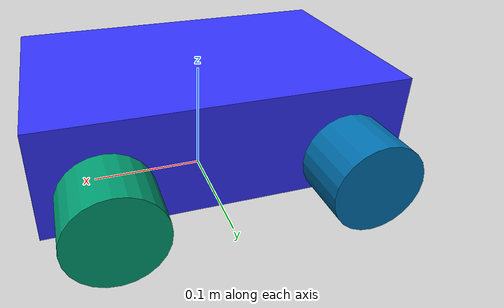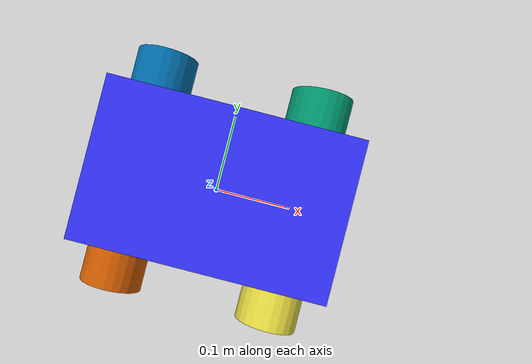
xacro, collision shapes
<?xml version="1.0"?>
<robot xmlns:xacro="http://www.ros.org/wiki/xacro" name="rona">

    <!-- In this file the basic structure of the omnidirectional robot RONA is described -->

    <xacro:include filename="$(find simple_rona_robot)/simple_description/front_left_wheel.xacro"/>
    <xacro:include filename="$(find simple_rona_robot)/simple_description/front_right_wheel.xacro"/>
    <xacro:include filename="$(find simple_rona_robot)/simple_description/rear_left_wheel.xacro"/>
    <xacro:include filename="$(find simple_rona_robot)/simple_description/rear_right_wheel.xacro"/>
    <xacro:include filename="$(find simple_rona_robot)/simple_description/colors.xacro"/>
    <xacro:include filename="$(find simple_rona_robot)/simple_description/physical_properties.xacro"/>

    <!-- ROBOT DESCRIPTION START -->

    <!-- Base link -->
    <link name="base_link">
    </link>

    <!-- Chassis -->
    <link name="chassis">
        <visual>
            <origin xyz="0 0 ${chassis_height/2}"/>
            <geometry>
                <box size="${chassis_length} ${chassis_width} ${chassis_height}"/>
            </geometry>
            <material name="blue"/>
        </visual>

        <collision>
            <origin xyz="0 0 ${chassis_height/2}"/>
            <geometry>
                <box size="0.297 0.188 0.09"/>
            </geometry>
            <material name="blue"/>
        </collision>

        <xacro:inertial_box mass="3" x="${chassis_length}" y="${chassis_width}" z="${chassis_height}">
            <origin xyz="0 0 ${chassis_length}" rpy="0 0 0"/>
        </xacro:inertial_box>

    </link>

    <joint name="chassis_joint" type="fixed">
        <parent link="base_link"/>
        <child link="chassis"/>
        <origin xyz="0 0 0.022"/>
    </joint>

    <!-- Front left wheel -->
    <xacro:front_left_wheel/>

    <!-- Front right wheel -->
    <xacro:front_right_wheel/>

    <!-- Rear left wheel -->
    <xacro:rear_left_wheel/>

    <!-- Rear right wheel -->
    <xacro:rear_right_wheel/>

    <!-- ROBOT DESCRIPTION END -->

</robot>

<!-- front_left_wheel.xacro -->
<robot xmlns:xacro="http://www.ros.org/wiki/xacro" >
    <xacro:include filename="physical_properties.xacro"/>
    <xacro:include filename="inertial_macros.xacro"/>

    <xacro:macro name="front_left_wheel">

        <link name="front_left_wheel">

            <inertial>
                <origin xyz = "0 0 0"/>
                <mass value="0.4"/>
                <inertia ixx="0.000239" ixy="0.0" ixz="0.0"
                        iyy="0.000239" iyz="0.0"
                        izz="0.000044" />
            </inertial>

            <visual>
                <!-- En rviz el eje X es el rojo, el Y el verde y el Z el azul -->
                <!-- Necesito seguir ajustando más fino basándome en el cilindro de colisiones -->
                <origin xyz="0.2543 -0.02958 -0.169" rpy="-${pi/2} 0 0"/>
                <geometry>
                    <mesh scale="0.001 0.001 0.001" filename="package://simple_rona_robot/meshes/front_left_wheel.stl"/>
                </geometry>
            </visual>

            <collision>
                <origin xyz="0 0 0" rpy="0 0 0"/>
                <geometry>
                    <cylinder radius="0.0375" length="0.05"/>
                </geometry>
            </collision>
        </link>

        <joint name="front_left_wheel_joint" type="continuous">
            <parent link="chassis"/>
            <child link="front_left_wheel"/>
            <origin xyz="${wheel_offset_x} ${wheel_offset_y} ${wheel_offset_z}" rpy="-${pi/2} 0 0"/>
            <axis xyz="0 0 1"/>
        </joint>
    </xacro:macro>

</robot>

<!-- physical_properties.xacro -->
<robot xmlns:xacro="http://www.ros.org/wiki/xacro" >

    <!-- Chassis measures -->
    <xacro:property name="chassis_length" value="0.297"/>
    <xacro:property name="chassis_width" value="0.188"/>
    <xacro:property name="chassis_height" value="0.09"/>
    <!-- En rviz el eje X es el rojo, el Y el verde y el Z el azul -->

    <!-- Wheels parameters -->
    <xacro:property name="wheel_offset_y" value="${chassis_width/2 + 0.025}"/>
    <xacro:property name="wheel_offset_x" value="${chassis_length/2 - 0.051}"/>
    <xacro:property name="wheel_offset_z" value="0.028"/>
    <xacro:property name="wheel_radius" value="0.0375"/>

    <!-- Rollers measures -->
    <xacro:property name="roller_diameter" value="0.01"/>
    <xacro:property name="roller_length" value="0.01"/>

</robot>

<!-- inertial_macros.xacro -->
<robot xmlns:xacro="http://www.ros.org/wiki/xacro" >

    <!-- Specify some standard inertial calculations https://en.wikipedia.org/wiki/List_of_moments_of_inertia -->
    <!-- These make use of xacro's mathematical functionality -->

    <xacro:macro name="inertial_box" params="mass x y z *origin">
        <inertial>
            <xacro:insert_block name="origin"/>
            <mass value="${mass}" />
            <inertia ixx="${(1/12) * mass * (y*y+z*z)}" ixy="0.0" ixz="0.0"
                    iyy="${(1/12) * mass * (x*x+z*z)}" iyz="0.0"
                    izz="${(1/12) * mass * (x*x+y*y)}" />
        </inertial>
    </xacro:macro>

    <xacro:macro name="inertial_cylinder" params="mass length radius *origin">
        <inertial>
            <xacro:insert_block name="origin"/>
            <mass value="${mass}" />
            <inertia ixx="${(1/12) * mass * (3*radius*radius + length*length)}" ixy="0.0" ixz="0.0"
                    iyy="${(1/12) * mass * (3*radius*radius + length*length)}" iyz="0.0"
                    izz="${(1/2) * mass * (radius*radius)}" />
        </inertial>
    </xacro:macro>

</robot>

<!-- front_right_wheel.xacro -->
<robot xmlns:xacro="http://www.ros.org/wiki/xacro" >
    <xacro:include filename="physical_properties.xacro"/>
    <xacro:include filename="inertial_macros.xacro"/>

    <xacro:macro name="front_right_wheel">

        <link name="front_right_wheel">

            <inertial>
                <origin xyz = "0 0 0"/>
                <mass value="0.4"/>
                <inertia ixx="0.000239" ixy="0.0" ixz="0.0"
                        iyy="0.000239" iyz="0.0"
                        izz="0.000044" />
            </inertial>

            <visual>
                <origin xyz="0.2548 -0.03 0.033" rpy="-${pi/2} 0 0"/>
                <geometry>
                    <mesh scale="0.001 0.001 0.001" filename="package://simple_rona_robot/meshes/front_right_wheel.stl"/>
                </geometry>
            </visual>

            <collision>
                <origin xyz="0 0 0" rpy="0 0 0"/>
                <geometry>
                    <cylinder radius="0.0375" length="0.05"/>
                </geometry>
            </collision>
        </link>

        <joint name="front_right_wheel_joint" type="continuous">
            <parent link="chassis"/>
            <child link="front_right_wheel"/>
            <origin xyz="${wheel_offset_x} ${-wheel_offset_y} ${wheel_offset_z}" rpy="-${pi/2} 0 0"/>
            <axis xyz="0 0 1"/>
        </joint>
    </xacro:macro>

</robot>

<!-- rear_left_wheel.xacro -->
<robot xmlns:xacro="http://www.ros.org/wiki/xacro" >
    <xacro:include filename="physical_properties.xacro"/>
    <xacro:include filename="inertial_macros.xacro"/>

    <xacro:macro name="rear_left_wheel">

        <link name="rear_left_wheel">

            <inertial>
                <origin xyz = "0 0 0"/>
                <mass value="0.4"/>
                <inertia ixx="0.000239" ixy="0.0" ixz="0.0"
                        iyy="0.000239" iyz="0.0"
                        izz="0.000044" />
            </inertial>

            <visual>
                <origin xyz="0.0451 -0.03 -0.1691" rpy="-${pi/2} 0 0"/>
                <geometry>
                    <mesh scale="0.001 0.001 0.001" filename="package://simple_rona_robot/meshes/rear_left_wheel.stl"/>
                </geometry>
            </visual>

            <collision>
                <origin xyz="0 0 0" rpy="0 0 0"/>
                <geometry>
                    <cylinder radius="0.0375" length="0.05"/>
                </geometry>
            </collision>
        </link>

        <joint name="rear_left_wheel_joint" type="continuous">
            <parent link="chassis"/>
            <child link="rear_left_wheel"/>
            <origin xyz="${-wheel_offset_x} ${wheel_offset_y} ${wheel_offset_z}" rpy="-${pi/2} 0 0"/>
            <axis xyz="0 0 1"/>
        </joint>
    </xacro:macro>

</robot>

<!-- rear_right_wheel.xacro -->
<robot xmlns:xacro="http://www.ros.org/wiki/xacro" >
    <xacro:include filename="physical_properties.xacro"/>
    <xacro:include filename="inertial_macros.xacro"/>

    <xacro:macro name="rear_right_wheel">

        <link name="rear_right_wheel">

            <inertial>
                <origin xyz = "0 0 0"/>
                <mass value="0.4"/>
                <inertia ixx="0.000239" ixy="0.0" ixz="0.0"
                        iyy="0.000239" iyz="0.0"
                        izz="0.000044" />
            </inertial>

            <visual>
                <origin xyz="0.045 -0.03 0.033" rpy="-${pi/2} 0 0"/>
                <geometry>
                    <mesh scale="0.001 0.001 0.001" filename="package://simple_rona_robot/meshes/rear_right_wheel.stl"/>
                </geometry>
            </visual>

            <collision>
                <origin xyz="0 0 0" rpy="0 0 0"/>
                <geometry>
                    <cylinder radius="0.0375" length="0.05"/>
                </geometry>
            </collision>
        </link>

        <joint name="rear_right_wheel_joint" type="continuous">
            <parent link="chassis"/>
            <child link="rear_right_wheel"/>
            <origin xyz="${-wheel_offset_x} ${-wheel_offset_y} ${wheel_offset_z}" rpy="-${pi/2} 0 0"/>
            <axis xyz="0 0 1"/>
        </joint>
    </xacro:macro>

</robot>

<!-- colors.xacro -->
<robot xmlns:xacro="http://www.ros.org/wiki/xacro" >

    <material name="white">
        <color rgba="1 1 1 1" />
    </material>

    <material name="orange">
        <color rgba="1 0.3 0.1 1" />
    </material>

    <material name="blue">
        <color rgba="0.2 0.2 1 1" />
    </material>

    <material name="black">
        <color rgba="0 0 0 1" />
    </material>

    <material name="red">
        <color rgba="1 0 0 1" />
    </material>
</robot>
